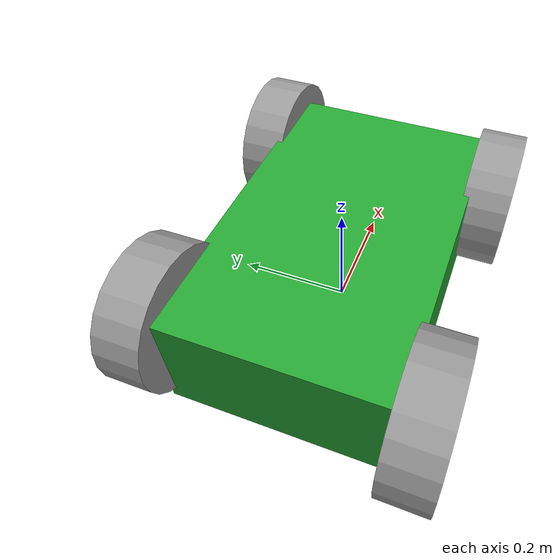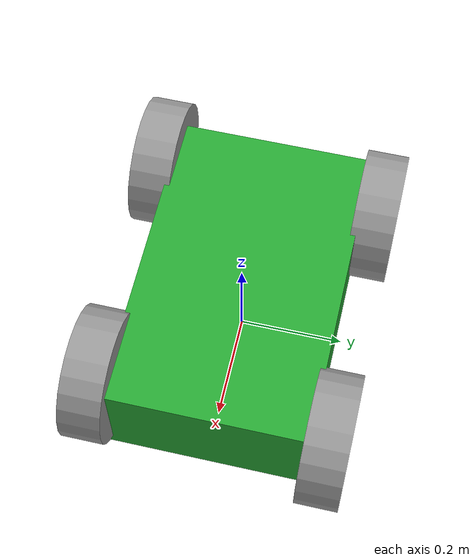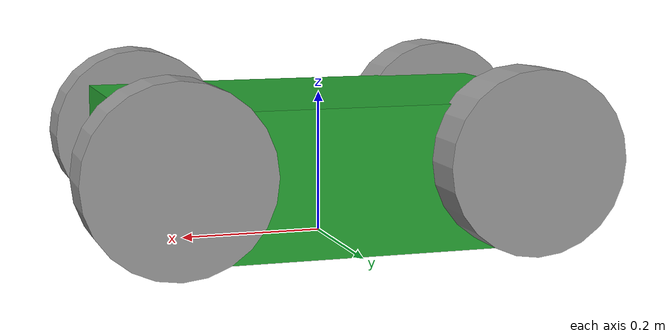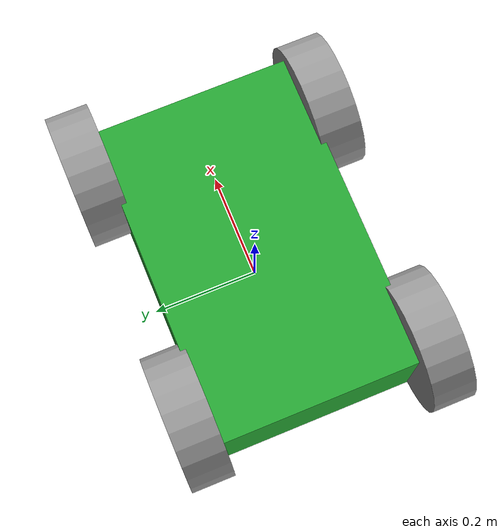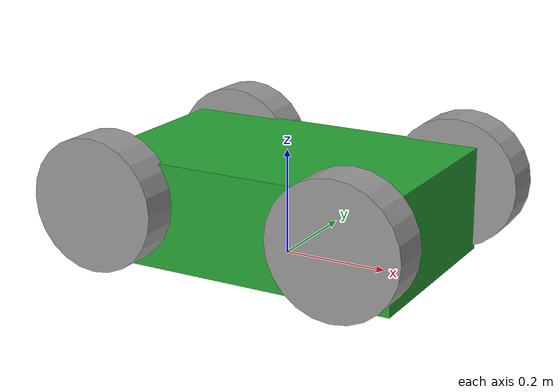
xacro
<?xml version="1.0"?>
<robot xmlns:xacro="http://www.ros.org/wiki/xacro">
    <xacro:property name="base_length" value="0.6"/>
    <xacro:property name="base_width" value="0.38"/>
    <xacro:property name="base_height" value="0.2"/>
    <xacro:property name="wheel_length" value="0.08"/>

   <link name="base_footprint"/>

    <link name="base_link">
        <visual>
            <geometry>
                <box size="${base_length} ${base_width} ${base_height}"/>
            </geometry>
            <origin xyz="0 0 0.1" rpy="0 0 0"/>
            <material name="green"/>
        </visual>
        <inertial>
             <mass value="60" />
                <origin xyz="0.00381548 -0.00072475 0.13654259" rpy="0 0 0" />
                <inertia ixx="0.0010966742070308941" ixy="-3.7461692282368137e-07" ixz="1.9558543577840812e-07"
                        iyy="0.0017930350217347623" iyz="2.0532496529124063e-07"
                        izz="0.0025355228375863507" />
        </inertial>
        <collision>
            <geometry>
                <box size="${base_length} 0.4 0.2"/>
            </geometry>
            <origin xyz="0 0 0.1" rpy="0 0 0"/>
        </collision>
    </link>

    <xacro:macro name="wheel_link" params="prefix">

    <link name="${prefix}_wheel_link">
            <visual>
                <geometry>
                    <cylinder radius="0.125" length="0.08"/>
                </geometry>
                <origin xyz="0 0 0" rpy="${pi/ 2.0} 0 0"/>
                <material name="grey"/>
            </visual>
            <collision>
                <geometry>
                    <cylinder radius="0.125" length="0.08"/>
                </geometry>
                <origin xyz="0 0 0" rpy="${pi/ 2.0} 0 0"/>
            </collision>
            <xacro:cylinder_inertia m="10" r="0.1" h="0.05" xyz="0 0 0" rpy="${pi/ 2.0} 0 0"/>
        </link>
    </xacro:macro>

    <xacro:wheel_link prefix="right_front"/>
    <xacro:wheel_link prefix="left_front"/>
    <xacro:wheel_link prefix="right_back"/>
    <xacro:wheel_link prefix="left_back"/>

    <joint name="base_footprint_link" type="fixed">
        <parent link="base_footprint"/>
        <child link="base_link"/>
        <origin xyz="0 0 0" rpy="0 0 0"/>
    </joint>

    <joint name="base_right_front_wheel_joint" type="continuous">
        <parent link="base_link"/>
        <child link="right_front_wheel_link"/>
        <origin xyz="-0.255  ${-(base_width/ 2.0) - 0.03} 0.125" rpy="0 0 0"/>
        <axis xyz="0 1 0"/>
    </joint>

    <joint name="base_left_front_wheel_joint" type="continuous">
        <parent link="base_link"/>
        <child link="left_front_wheel_link"/>
        <origin xyz="0.255  ${(base_width / 2.0) + 0.03} 0.125" rpy="0 0 0"/>
        <axis xyz="0 1 0"/>
    </joint>
        <joint name="base_right_back_wheel_joint" type="continuous">
        <parent link="base_link"/>
        <child link="right_back_wheel_link"/>
        <origin xyz="0.225  ${-(base_width/ 2.0) - 0.03} 0.125" rpy="0 0 0"/>
        <axis xyz="0 1 0"/>
    </joint>

    <joint name="base_left_back_wheel_joint" type="continuous">
        <parent link="base_link"/>
        <child link="left_back_wheel_link"/>
        <origin xyz="-0.225  ${(base_width / 2.0) + 0.03} 0.125" rpy="0 0 0"/>
        <axis xyz="0 1 0"/>
    </joint>

</robot>
